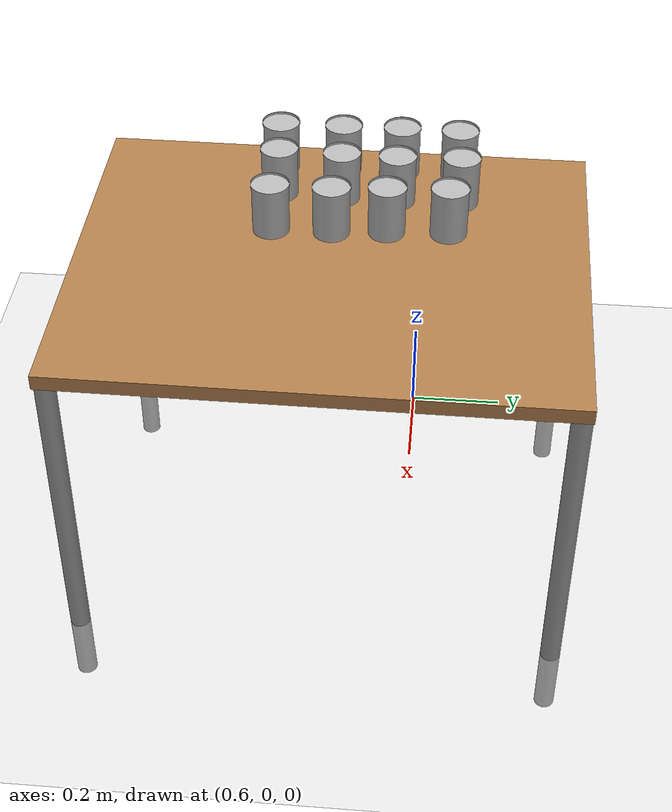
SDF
<sdf version="1.6">
 <world name="default">
  <model name="ground_plane">
   <static>1</static>
   <link name="link">
    <collision name="collision">
     <geometry><plane><normal>0 0 1</normal><size>100 100</size></plane></geometry>
     <surface>
      <contact><collide_bitmask>65535</collide_bitmask></contact>
      <friction><ode><mu>100</mu><mu2>50</mu2></ode></friction>
     </surface>
    </collision>
    <visual name="visual">
     <cast_shadows>0</cast_shadows>
     <geometry><plane><normal>0 0 1</normal><size>100 100</size></plane></geometry>
     <material>
      <script><uri>file://media/materials/scripts/gazebo.material</uri><name>Gazebo/Grey</name></script>
     </material>
    </visual>
   </link>
  </model>
  <model name="table">
   <static>1</static>
   <link name="link">
    <collision name="surface">
     <pose>0 0 0.8 0 -0 0</pose>
     <geometry><box><size>1 0.8 0.03</size></box></geometry>
    </collision>
    <visual name="visual1">
     <pose>0 0 0.8 0 -0 0</pose>
     <geometry><box><size>1 0.8 0.03</size></box></geometry>
     <material>
      <script><uri>file://media/materials/scripts/gazebo.material</uri><name>Gazebo/Wood</name></script>
     </material>
    </visual>
    <collision name="front_left_leg">
     <pose>0.48 0.38 0.4 0 -0 0</pose>
     <geometry><cylinder><radius>0.02</radius><length>0.8</length></cylinder></geometry>
    </collision>
    <visual name="front_left_leg">
     <pose>0.48 0.38 0.4 0 -0 0</pose>
     <geometry><cylinder><radius>0.02</radius><length>0.8</length></cylinder></geometry>
     <material>
      <script><uri>file://media/materials/scripts/gazebo.material</uri><name>Gazebo/Grey</name></script>
     </material>
    </visual>
    <collision name="front_right_leg">
     <pose>0.48 -0.38 0.4 0 -0 0</pose>
     <geometry><cylinder><radius>0.02</radius><length>0.8</length></cylinder></geometry>
    </collision>
    <visual name="front_right_leg">
     <pose>0.48 -0.38 0.4 0 -0 0</pose>
     <geometry><cylinder><radius>0.02</radius><length>0.8</length></cylinder></geometry>
     <material>
      <script><uri>file://media/materials/scripts/gazebo.material</uri><name>Gazebo/Grey</name></script>
     </material>
    </visual>
    <collision name="back_right_leg">
     <pose>-0.48 -0.38 0.4 0 -0 0</pose>
     <geometry><cylinder><radius>0.02</radius><length>0.8</length></cylinder></geometry>
    </collision>
    <visual name="back_right_leg">
     <pose>-0.48 -0.38 0.4 0 -0 0</pose>
     <geometry><cylinder><radius>0.02</radius><length>0.8</length></cylinder></geometry>
     <material>
      <script><uri>file://media/materials/scripts/gazebo.material</uri><name>Gazebo/Grey</name></script>
     </material>
    </visual>
    <collision name="back_left_leg">
     <pose>-0.48 0.38 0.4 0 -0 0</pose>
     <geometry><cylinder><radius>0.02</radius><length>0.8</length></cylinder></geometry>
    </collision>
    <visual name="back_left_leg">
     <pose>-0.48 0.38 0.4 0 -0 0</pose>
     <geometry><cylinder><radius>0.02</radius><length>0.8</length></cylinder></geometry>
     <material>
      <script><uri>file://media/materials/scripts/gazebo.material</uri><name>Gazebo/Grey</name></script>
     </material>
    </visual>
    <velocity_decay><linear>0</linear><angular>0</angular></velocity_decay>
   </link>
   <pose>0.979095 -0.163989 -0.149239 0 0 -1.57506</pose>
  </model>
  <model name="standard_can_fit_clone">
   <link name="link_0">
    <inertial>
     <mass>0.4</mass>
     <inertia>
      <ixx>0.000936</ixx>
      <ixy>0</ixy>
      <ixz>0</ixz>
      <iyy>0.000936</iyy>
      <iyz>0</iyz>
      <izz>0.001066</izz>
     </inertia>
    </inertial>
    <visual name="visual">
     <geometry><mesh><uri>model://standard_can_fit/standard_can_fit.dae</uri><scale>1 1 1</scale></mesh></geometry>
    </visual>
    <collision name="collision">
     <geometry><mesh><uri>model://standard_can_fit/standard_can_fit.dae</uri><scale>1 1 1</scale></mesh></geometry>
     <surface>
      <friction>
       <ode><mu>1</mu><mu2>1</mu2><fdir1>0 0 0</fdir1><slip1>0</slip1><slip2>0</slip2></ode>
       <torsional>
        <coefficient>1</coefficient>
        <patch_radius>0</patch_radius>
        <surface_radius>0</surface_radius>
        <use_patch_radius>1</use_patch_radius>
        <ode><slip>0</slip></ode>
       </torsional>
      </friction>
      <bounce><restitution_coefficient>0</restitution_coefficient><threshold>1e+06</threshold></bounce>
      <contact>
       <collide_without_contact>0</collide_without_contact>
       <collide_without_contact_bitmask>1</collide_without_contact_bitmask>
       <collide_bitmask>1</collide_bitmask>
       <ode>
        <soft_cfm>0</soft_cfm>
        <soft_erp>0.2</soft_erp>
        <kp>1e+13</kp>
        <kd>1</kd>
        <max_vel>0.01</max_vel>
        <min_depth>0.01</min_depth>
       </ode>
       <bullet>
        <split_impulse>1</split_impulse>
        <split_impulse_penetration_threshold>-0.01</split_impulse_penetration_threshold>
        <soft_cfm>0</soft_cfm>
        <soft_erp>0.2</soft_erp>
        <kp>1e+13</kp>
        <kd>1</kd>
       </bullet>
      </contact>
     </surface>
    </collision>
   </link>
   <static>0</static>
   <pose>0.656268 0.073121 0.719743 0.000499 -0.000279 -0.003129</pose>
  </model>
  <model name="standard_can_fit_clone_0">
   <link name="link_0">
    <inertial>
     <mass>0.4</mass>
     <inertia>
      <ixx>0.000936</ixx>
      <ixy>0</ixy>
      <ixz>0</ixz>
      <iyy>0.000936</iyy>
      <iyz>0</iyz>
      <izz>0.001066</izz>
     </inertia>
    </inertial>
    <visual name="visual">
     <geometry><mesh><uri>model://standard_can_fit/standard_can_fit.dae</uri><scale>1 1 1</scale></mesh></geometry>
    </visual>
    <collision name="collision">
     <geometry><mesh><uri>model://standard_can_fit/standard_can_fit.dae</uri><scale>1 1 1</scale></mesh></geometry>
     <surface>
      <friction>
       <ode><mu>1</mu><mu2>1</mu2><fdir1>0 0 0</fdir1><slip1>0</slip1><slip2>0</slip2></ode>
       <torsional>
        <coefficient>1</coefficient>
        <patch_radius>0</patch_radius>
        <surface_radius>0</surface_radius>
        <use_patch_radius>1</use_patch_radius>
        <ode><slip>0</slip></ode>
       </torsional>
      </friction>
      <bounce><restitution_coefficient>0</restitution_coefficient><threshold>1e+06</threshold></bounce>
      <contact>
       <collide_without_contact>0</collide_without_contact>
       <collide_without_contact_bitmask>1</collide_without_contact_bitmask>
       <collide_bitmask>1</collide_bitmask>
       <ode>
        <soft_cfm>0</soft_cfm>
        <soft_erp>0.2</soft_erp>
        <kp>1e+13</kp>
        <kd>1</kd>
        <max_vel>0.01</max_vel>
        <min_depth>0.01</min_depth>
       </ode>
       <bullet>
        <split_impulse>1</split_impulse>
        <split_impulse_penetration_threshold>-0.01</split_impulse_penetration_threshold>
        <soft_cfm>0</soft_cfm>
        <soft_erp>0.2</soft_erp>
        <kp>1e+13</kp>
        <kd>1</kd>
       </bullet>
      </contact>
     </surface>
    </collision>
   </link>
   <static>0</static>
   <pose>0.654124 -0.045315 0.71969 0.001828 -0.001012 -0.003967</pose>
  </model>
  <model name="standard_can_fit_clone_1">
   <link name="link_0">
    <inertial>
     <mass>0.4</mass>
     <inertia>
      <ixx>0.000936</ixx>
      <ixy>0</ixy>
      <ixz>0</ixz>
      <iyy>0.000936</iyy>
      <iyz>0</iyz>
      <izz>0.001066</izz>
     </inertia>
    </inertial>
    <visual name="visual">
     <geometry><mesh><uri>model://standard_can_fit/standard_can_fit.dae</uri><scale>1 1 1</scale></mesh></geometry>
    </visual>
    <collision name="collision">
     <geometry><mesh><uri>model://standard_can_fit/standard_can_fit.dae</uri><scale>1 1 1</scale></mesh></geometry>
     <surface>
      <friction>
       <ode><mu>1</mu><mu2>1</mu2><fdir1>0 0 0</fdir1><slip1>0</slip1><slip2>0</slip2></ode>
       <torsional>
        <coefficient>1</coefficient>
        <patch_radius>0</patch_radius>
        <surface_radius>0</surface_radius>
        <use_patch_radius>1</use_patch_radius>
        <ode><slip>0</slip></ode>
       </torsional>
      </friction>
      <bounce><restitution_coefficient>0</restitution_coefficient><threshold>1e+06</threshold></bounce>
      <contact>
       <collide_without_contact>0</collide_without_contact>
       <collide_without_contact_bitmask>1</collide_without_contact_bitmask>
       <collide_bitmask>1</collide_bitmask>
       <ode>
        <soft_cfm>0</soft_cfm>
        <soft_erp>0.2</soft_erp>
        <kp>1e+13</kp>
        <kd>1</kd>
        <max_vel>0.01</max_vel>
        <min_depth>0.01</min_depth>
       </ode>
       <bullet>
        <split_impulse>1</split_impulse>
        <split_impulse_penetration_threshold>-0.01</split_impulse_penetration_threshold>
        <soft_cfm>0</soft_cfm>
        <soft_erp>0.2</soft_erp>
        <kp>1e+13</kp>
        <kd>1</kd>
       </bullet>
      </contact>
     </surface>
    </collision>
   </link>
   <static>0</static>
   <pose>0.655839 -0.165451 0.719755 0.00015 -8.1e-05 -0.005005</pose>
  </model>
  <model name="standard_can_fit_clone_2">
   <link name="link_0">
    <inertial>
     <mass>0.4</mass>
     <inertia>
      <ixx>0.000936</ixx>
      <ixy>0</ixy>
      <ixz>0</ixz>
      <iyy>0.000936</iyy>
      <iyz>0</iyz>
      <izz>0.001066</izz>
     </inertia>
    </inertial>
    <visual name="visual">
     <geometry><mesh><uri>model://standard_can_fit/standard_can_fit.dae</uri><scale>1 1 1</scale></mesh></geometry>
    </visual>
    <collision name="collision">
     <geometry><mesh><uri>model://standard_can_fit/standard_can_fit.dae</uri><scale>1 1 1</scale></mesh></geometry>
     <surface>
      <friction>
       <ode><mu>1</mu><mu2>1</mu2><fdir1>0 0 0</fdir1><slip1>0</slip1><slip2>0</slip2></ode>
       <torsional>
        <coefficient>1</coefficient>
        <patch_radius>0</patch_radius>
        <surface_radius>0</surface_radius>
        <use_patch_radius>1</use_patch_radius>
        <ode><slip>0</slip></ode>
       </torsional>
      </friction>
      <bounce><restitution_coefficient>0</restitution_coefficient><threshold>1e+06</threshold></bounce>
      <contact>
       <collide_without_contact>0</collide_without_contact>
       <collide_without_contact_bitmask>1</collide_without_contact_bitmask>
       <collide_bitmask>1</collide_bitmask>
       <ode>
        <soft_cfm>0</soft_cfm>
        <soft_erp>0.2</soft_erp>
        <kp>1e+13</kp>
        <kd>1</kd>
        <max_vel>0.01</max_vel>
        <min_depth>0.01</min_depth>
       </ode>
       <bullet>
        <split_impulse>1</split_impulse>
        <split_impulse_penetration_threshold>-0.01</split_impulse_penetration_threshold>
        <soft_cfm>0</soft_cfm>
        <soft_erp>0.2</soft_erp>
        <kp>1e+13</kp>
        <kd>1</kd>
       </bullet>
      </contact>
     </surface>
    </collision>
   </link>
   <static>0</static>
   <pose>0.656054 -0.294639 0.719756 0.000118 -6.9e-05 -0.005028</pose>
  </model>
  <model name="standard_can_fit_clone_4_clone">
   <link name="link_0">
    <inertial>
     <mass>0.4</mass>
     <inertia>
      <ixx>0.000936</ixx>
      <ixy>0</ixy>
      <ixz>0</ixz>
      <iyy>0.000936</iyy>
      <iyz>0</iyz>
      <izz>0.001066</izz>
     </inertia>
    </inertial>
    <visual name="visual">
     <geometry><mesh><uri>model://standard_can_fit/standard_can_fit.dae</uri><scale>1 1 1</scale></mesh></geometry>
    </visual>
    <collision name="collision">
     <geometry><mesh><uri>model://standard_can_fit/standard_can_fit.dae</uri><scale>1 1 1</scale></mesh></geometry>
     <surface>
      <friction>
       <ode><mu>1</mu><mu2>1</mu2><fdir1>0 0 0</fdir1><slip1>0</slip1><slip2>0</slip2></ode>
       <torsional>
        <coefficient>1</coefficient>
        <patch_radius>0</patch_radius>
        <surface_radius>0</surface_radius>
        <use_patch_radius>1</use_patch_radius>
        <ode><slip>0</slip></ode>
       </torsional>
      </friction>
      <bounce><restitution_coefficient>0</restitution_coefficient><threshold>1e+06</threshold></bounce>
      <contact>
       <collide_without_contact>0</collide_without_contact>
       <collide_without_contact_bitmask>1</collide_without_contact_bitmask>
       <collide_bitmask>1</collide_bitmask>
       <ode>
        <soft_cfm>0</soft_cfm>
        <soft_erp>0.2</soft_erp>
        <kp>1e+13</kp>
        <kd>1</kd>
        <max_vel>0.01</max_vel>
        <min_depth>0.01</min_depth>
       </ode>
       <bullet>
        <split_impulse>1</split_impulse>
        <split_impulse_penetration_threshold>-0.01</split_impulse_penetration_threshold>
        <soft_cfm>0</soft_cfm>
        <soft_erp>0.2</soft_erp>
        <kp>1e+13</kp>
        <kd>1</kd>
       </bullet>
      </contact>
     </surface>
    </collision>
   </link>
   <static>0</static>
   <pose>0.758235 0.07931 0.71973 0.000466 -0.000472 -0.003638</pose>
  </model>
  <model name="standard_can_fit_clone_4_clone_0">
   <link name="link_0">
    <inertial>
     <mass>0.4</mass>
     <inertia>
      <ixx>0.000936</ixx>
      <ixy>0</ixy>
      <ixz>0</ixz>
      <iyy>0.000936</iyy>
      <iyz>0</iyz>
      <izz>0.001066</izz>
     </inertia>
    </inertial>
    <visual name="visual">
     <geometry><mesh><uri>model://standard_can_fit/standard_can_fit.dae</uri><scale>1 1 1</scale></mesh></geometry>
    </visual>
    <collision name="collision">
     <geometry><mesh><uri>model://standard_can_fit/standard_can_fit.dae</uri><scale>1 1 1</scale></mesh></geometry>
     <surface>
      <friction>
       <ode><mu>1</mu><mu2>1</mu2><fdir1>0 0 0</fdir1><slip1>0</slip1><slip2>0</slip2></ode>
       <torsional>
        <coefficient>1</coefficient>
        <patch_radius>0</patch_radius>
        <surface_radius>0</surface_radius>
        <use_patch_radius>1</use_patch_radius>
        <ode><slip>0</slip></ode>
       </torsional>
      </friction>
      <bounce><restitution_coefficient>0</restitution_coefficient><threshold>1e+06</threshold></bounce>
      <contact>
       <collide_without_contact>0</collide_without_contact>
       <collide_without_contact_bitmask>1</collide_without_contact_bitmask>
       <collide_bitmask>1</collide_bitmask>
       <ode>
        <soft_cfm>0</soft_cfm>
        <soft_erp>0.2</soft_erp>
        <kp>1e+13</kp>
        <kd>1</kd>
        <max_vel>0.01</max_vel>
        <min_depth>0.01</min_depth>
       </ode>
       <bullet>
        <split_impulse>1</split_impulse>
        <split_impulse_penetration_threshold>-0.01</split_impulse_penetration_threshold>
        <soft_cfm>0</soft_cfm>
        <soft_erp>0.2</soft_erp>
        <kp>1e+13</kp>
        <kd>1</kd>
       </bullet>
      </contact>
     </surface>
    </collision>
   </link>
   <static>0</static>
   <pose>0.76303 -0.04844 0.71973 0.000456 -0.00048 -0.003638</pose>
  </model>
  <model name="standard_can_fit_clone_4_clone_1">
   <link name="link_0">
    <inertial>
     <mass>0.4</mass>
     <inertia>
      <ixx>0.000936</ixx>
      <ixy>0</ixy>
      <ixz>0</ixz>
      <iyy>0.000936</iyy>
      <iyz>0</iyz>
      <izz>0.001066</izz>
     </inertia>
    </inertial>
    <visual name="visual">
     <geometry><mesh><uri>model://standard_can_fit/standard_can_fit.dae</uri><scale>1 1 1</scale></mesh></geometry>
    </visual>
    <collision name="collision">
     <geometry><mesh><uri>model://standard_can_fit/standard_can_fit.dae</uri><scale>1 1 1</scale></mesh></geometry>
     <surface>
      <friction>
       <ode><mu>1</mu><mu2>1</mu2><fdir1>0 0 0</fdir1><slip1>0</slip1><slip2>0</slip2></ode>
       <torsional>
        <coefficient>1</coefficient>
        <patch_radius>0</patch_radius>
        <surface_radius>0</surface_radius>
        <use_patch_radius>1</use_patch_radius>
        <ode><slip>0</slip></ode>
       </torsional>
      </friction>
      <bounce><restitution_coefficient>0</restitution_coefficient><threshold>1e+06</threshold></bounce>
      <contact>
       <collide_without_contact>0</collide_without_contact>
       <collide_without_contact_bitmask>1</collide_without_contact_bitmask>
       <collide_bitmask>1</collide_bitmask>
       <ode>
        <soft_cfm>0</soft_cfm>
        <soft_erp>0.2</soft_erp>
        <kp>1e+13</kp>
        <kd>1</kd>
        <max_vel>0.01</max_vel>
        <min_depth>0.01</min_depth>
       </ode>
       <bullet>
        <split_impulse>1</split_impulse>
        <split_impulse_penetration_threshold>-0.01</split_impulse_penetration_threshold>
        <soft_cfm>0</soft_cfm>
        <soft_erp>0.2</soft_erp>
        <kp>1e+13</kp>
        <kd>1</kd>
       </bullet>
      </contact>
     </surface>
    </collision>
   </link>
   <static>0</static>
   <pose>0.760725 -0.160549 0.71973 0.000481 -0.00047 -0.003638</pose>
  </model>
  <model name="standard_can_fit_clone_4_clone_2">
   <link name="link_0">
    <inertial>
     <mass>0.4</mass>
     <inertia>
      <ixx>0.000936</ixx>
      <ixy>0</ixy>
      <ixz>0</ixz>
      <iyy>0.000936</iyy>
      <iyz>0</iyz>
      <izz>0.001066</izz>
     </inertia>
    </inertial>
    <visual name="visual">
     <geometry><mesh><uri>model://standard_can_fit/standard_can_fit.dae</uri><scale>1 1 1</scale></mesh></geometry>
    </visual>
    <collision name="collision">
     <geometry><mesh><uri>model://standard_can_fit/standard_can_fit.dae</uri><scale>1 1 1</scale></mesh></geometry>
     <surface>
      <friction>
       <ode><mu>1</mu><mu2>1</mu2><fdir1>0 0 0</fdir1><slip1>0</slip1><slip2>0</slip2></ode>
       <torsional>
        <coefficient>1</coefficient>
        <patch_radius>0</patch_radius>
        <surface_radius>0</surface_radius>
        <use_patch_radius>1</use_patch_radius>
        <ode><slip>0</slip></ode>
       </torsional>
      </friction>
      <bounce><restitution_coefficient>0</restitution_coefficient><threshold>1e+06</threshold></bounce>
      <contact>
       <collide_without_contact>0</collide_without_contact>
       <collide_without_contact_bitmask>1</collide_without_contact_bitmask>
       <collide_bitmask>1</collide_bitmask>
       <ode>
        <soft_cfm>0</soft_cfm>
        <soft_erp>0.2</soft_erp>
        <kp>1e+13</kp>
        <kd>1</kd>
        <max_vel>0.01</max_vel>
        <min_depth>0.01</min_depth>
       </ode>
       <bullet>
        <split_impulse>1</split_impulse>
        <split_impulse_penetration_threshold>-0.01</split_impulse_penetration_threshold>
        <soft_cfm>0</soft_cfm>
        <soft_erp>0.2</soft_erp>
        <kp>1e+13</kp>
        <kd>1</kd>
       </bullet>
      </contact>
     </surface>
    </collision>
   </link>
   <static>0</static>
   <pose>0.755273 -0.287308 0.71973 0.000456 -0.000494 -0.003638</pose>
  </model>
  <model name="standard_can_fit_clone_4_clone_5">
   <link name="link_0">
    <inertial>
     <mass>0.4</mass>
     <inertia>
      <ixx>0.000936</ixx>
      <ixy>0</ixy>
      <ixz>0</ixz>
      <iyy>0.000936</iyy>
      <iyz>0</iyz>
      <izz>0.001066</izz>
     </inertia>
    </inertial>
    <visual name="visual">
     <geometry><mesh><uri>model://standard_can_fit/standard_can_fit.dae</uri><scale>1 1 1</scale></mesh></geometry>
    </visual>
    <collision name="collision">
     <geometry><mesh><uri>model://standard_can_fit/standard_can_fit.dae</uri><scale>1 1 1</scale></mesh></geometry>
     <surface>
      <friction>
       <ode><mu>1</mu><mu2>1</mu2><fdir1>0 0 0</fdir1><slip1>0</slip1><slip2>0</slip2></ode>
       <torsional>
        <coefficient>1</coefficient>
        <patch_radius>0</patch_radius>
        <surface_radius>0</surface_radius>
        <use_patch_radius>1</use_patch_radius>
        <ode><slip>0</slip></ode>
       </torsional>
      </friction>
      <bounce><restitution_coefficient>0</restitution_coefficient><threshold>1e+06</threshold></bounce>
      <contact>
       <collide_without_contact>0</collide_without_contact>
       <collide_without_contact_bitmask>1</collide_without_contact_bitmask>
       <collide_bitmask>1</collide_bitmask>
       <ode>
        <soft_cfm>0</soft_cfm>
        <soft_erp>0.2</soft_erp>
        <kp>1e+13</kp>
        <kd>1</kd>
        <max_vel>0.01</max_vel>
        <min_depth>0.01</min_depth>
       </ode>
       <bullet>
        <split_impulse>1</split_impulse>
        <split_impulse_penetration_threshold>-0.01</split_impulse_penetration_threshold>
        <soft_cfm>0</soft_cfm>
        <soft_erp>0.2</soft_erp>
        <kp>1e+13</kp>
        <kd>1</kd>
       </bullet>
      </contact>
     </surface>
    </collision>
   </link>
   <static>0</static>
   <pose>0.885788 -0.290764 0.71973 0.000451 -0.000497 -0.003638</pose>
  </model>
  <model name="standard_can_fit_clone_4_clone_6">
   <link name="link_0">
    <inertial>
     <mass>0.4</mass>
     <inertia>
      <ixx>0.000936</ixx>
      <ixy>0</ixy>
      <ixz>0</ixz>
      <iyy>0.000936</iyy>
      <iyz>0</iyz>
      <izz>0.001066</izz>
     </inertia>
    </inertial>
    <visual name="visual">
     <geometry><mesh><uri>model://standard_can_fit/standard_can_fit.dae</uri><scale>1 1 1</scale></mesh></geometry>
    </visual>
    <collision name="collision">
     <geometry><mesh><uri>model://standard_can_fit/standard_can_fit.dae</uri><scale>1 1 1</scale></mesh></geometry>
     <surface>
      <friction>
       <ode><mu>1</mu><mu2>1</mu2><fdir1>0 0 0</fdir1><slip1>0</slip1><slip2>0</slip2></ode>
       <torsional>
        <coefficient>1</coefficient>
        <patch_radius>0</patch_radius>
        <surface_radius>0</surface_radius>
        <use_patch_radius>1</use_patch_radius>
        <ode><slip>0</slip></ode>
       </torsional>
      </friction>
      <bounce><restitution_coefficient>0</restitution_coefficient><threshold>1e+06</threshold></bounce>
      <contact>
       <collide_without_contact>0</collide_without_contact>
       <collide_without_contact_bitmask>1</collide_without_contact_bitmask>
       <collide_bitmask>1</collide_bitmask>
       <ode>
        <soft_cfm>0</soft_cfm>
        <soft_erp>0.2</soft_erp>
        <kp>1e+13</kp>
        <kd>1</kd>
        <max_vel>0.01</max_vel>
        <min_depth>0.01</min_depth>
       </ode>
       <bullet>
        <split_impulse>1</split_impulse>
        <split_impulse_penetration_threshold>-0.01</split_impulse_penetration_threshold>
        <soft_cfm>0</soft_cfm>
        <soft_erp>0.2</soft_erp>
        <kp>1e+13</kp>
        <kd>1</kd>
       </bullet>
      </contact>
     </surface>
    </collision>
   </link>
   <static>0</static>
   <pose>0.885355 -0.17076 0.71973 0.000463 -0.000485 -0.003638</pose>
  </model>
  <model name="standard_can_fit_clone_4_clone_7">
   <link name="link_0">
    <inertial>
     <mass>0.4</mass>
     <inertia>
      <ixx>0.000936</ixx>
      <ixy>0</ixy>
      <ixz>0</ixz>
      <iyy>0.000936</iyy>
      <iyz>0</iyz>
      <izz>0.001066</izz>
     </inertia>
    </inertial>
    <visual name="visual">
     <geometry><mesh><uri>model://standard_can_fit/standard_can_fit.dae</uri><scale>1 1 1</scale></mesh></geometry>
    </visual>
    <collision name="collision">
     <geometry><mesh><uri>model://standard_can_fit/standard_can_fit.dae</uri><scale>1 1 1</scale></mesh></geometry>
     <surface>
      <friction>
       <ode><mu>1</mu><mu2>1</mu2><fdir1>0 0 0</fdir1><slip1>0</slip1><slip2>0</slip2></ode>
       <torsional>
        <coefficient>1</coefficient>
        <patch_radius>0</patch_radius>
        <surface_radius>0</surface_radius>
        <use_patch_radius>1</use_patch_radius>
        <ode><slip>0</slip></ode>
       </torsional>
      </friction>
      <bounce><restitution_coefficient>0</restitution_coefficient><threshold>1e+06</threshold></bounce>
      <contact>
       <collide_without_contact>0</collide_without_contact>
       <collide_without_contact_bitmask>1</collide_without_contact_bitmask>
       <collide_bitmask>1</collide_bitmask>
       <ode>
        <soft_cfm>0</soft_cfm>
        <soft_erp>0.2</soft_erp>
        <kp>1e+13</kp>
        <kd>1</kd>
        <max_vel>0.01</max_vel>
        <min_depth>0.01</min_depth>
       </ode>
       <bullet>
        <split_impulse>1</split_impulse>
        <split_impulse_penetration_threshold>-0.01</split_impulse_penetration_threshold>
        <soft_cfm>0</soft_cfm>
        <soft_erp>0.2</soft_erp>
        <kp>1e+13</kp>
        <kd>1</kd>
       </bullet>
      </contact>
     </surface>
    </collision>
   </link>
   <static>0</static>
   <pose>0.876364 -0.062179 0.71973 0.000479 -0.000465 -0.003638</pose>
  </model>
  <model name="standard_can_fit_clone_4_clone_8">
   <link name="link_0">
    <inertial>
     <mass>0.4</mass>
     <inertia>
      <ixx>0.000936</ixx>
      <ixy>0</ixy>
      <ixz>0</ixz>
      <iyy>0.000936</iyy>
      <iyz>0</iyz>
      <izz>0.001066</izz>
     </inertia>
    </inertial>
    <visual name="visual">
     <geometry><mesh><uri>model://standard_can_fit/standard_can_fit.dae</uri><scale>1 1 1</scale></mesh></geometry>
    </visual>
    <collision name="collision">
     <geometry><mesh><uri>model://standard_can_fit/standard_can_fit.dae</uri><scale>1 1 1</scale></mesh></geometry>
     <surface>
      <friction>
       <ode><mu>1</mu><mu2>1</mu2><fdir1>0 0 0</fdir1><slip1>0</slip1><slip2>0</slip2></ode>
       <torsional>
        <coefficient>1</coefficient>
        <patch_radius>0</patch_radius>
        <surface_radius>0</surface_radius>
        <use_patch_radius>1</use_patch_radius>
        <ode><slip>0</slip></ode>
       </torsional>
      </friction>
      <bounce><restitution_coefficient>0</restitution_coefficient><threshold>1e+06</threshold></bounce>
      <contact>
       <collide_without_contact>0</collide_without_contact>
       <collide_without_contact_bitmask>1</collide_without_contact_bitmask>
       <collide_bitmask>1</collide_bitmask>
       <ode>
        <soft_cfm>0</soft_cfm>
        <soft_erp>0.2</soft_erp>
        <kp>1e+13</kp>
        <kd>1</kd>
        <max_vel>0.01</max_vel>
        <min_depth>0.01</min_depth>
       </ode>
       <bullet>
        <split_impulse>1</split_impulse>
        <split_impulse_penetration_threshold>-0.01</split_impulse_penetration_threshold>
        <soft_cfm>0</soft_cfm>
        <soft_erp>0.2</soft_erp>
        <kp>1e+13</kp>
        <kd>1</kd>
       </bullet>
      </contact>
     </surface>
    </collision>
   </link>
   <static>0</static>
   <pose>0.870527 0.059899 0.71976 3e-05 -2.7e-05 -0.003358</pose>
  </model>
 </world>
</sdf>
